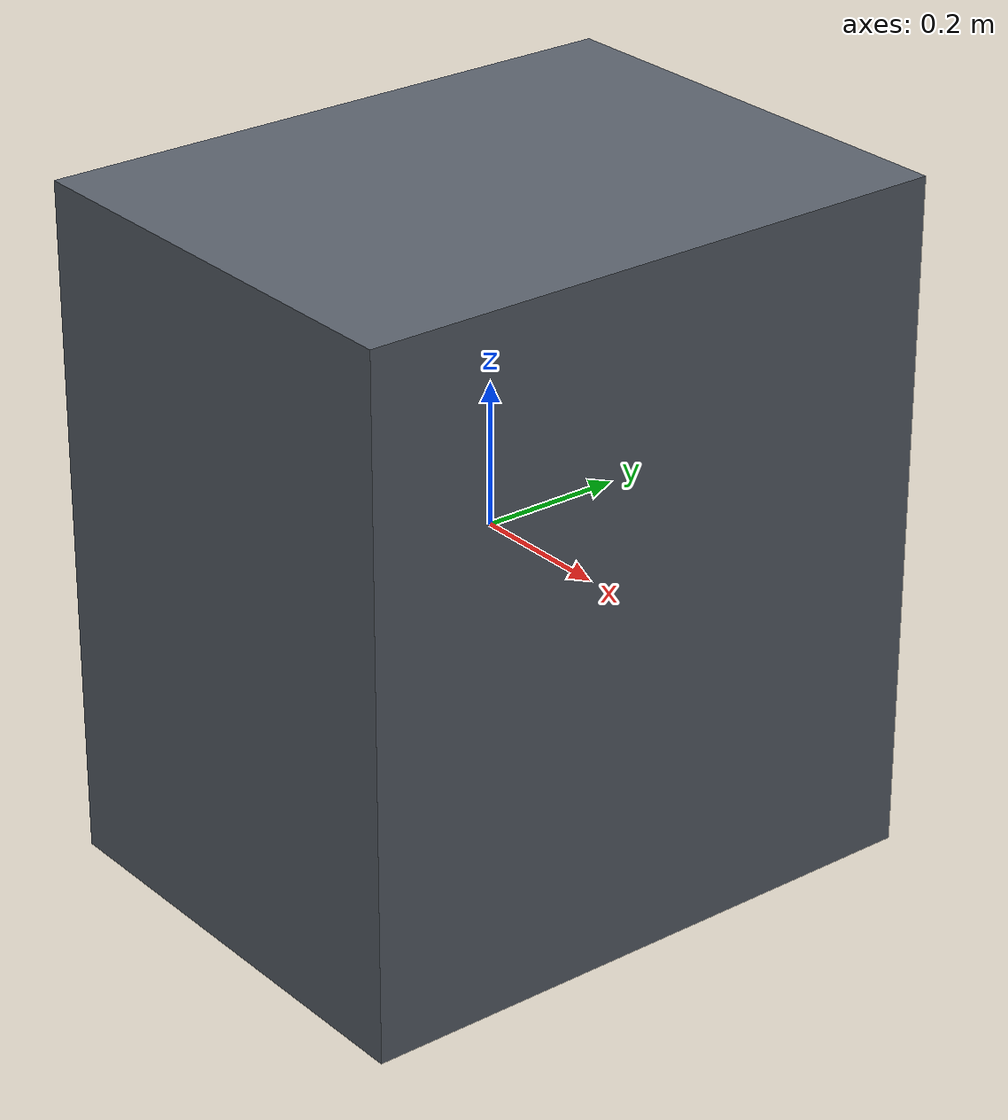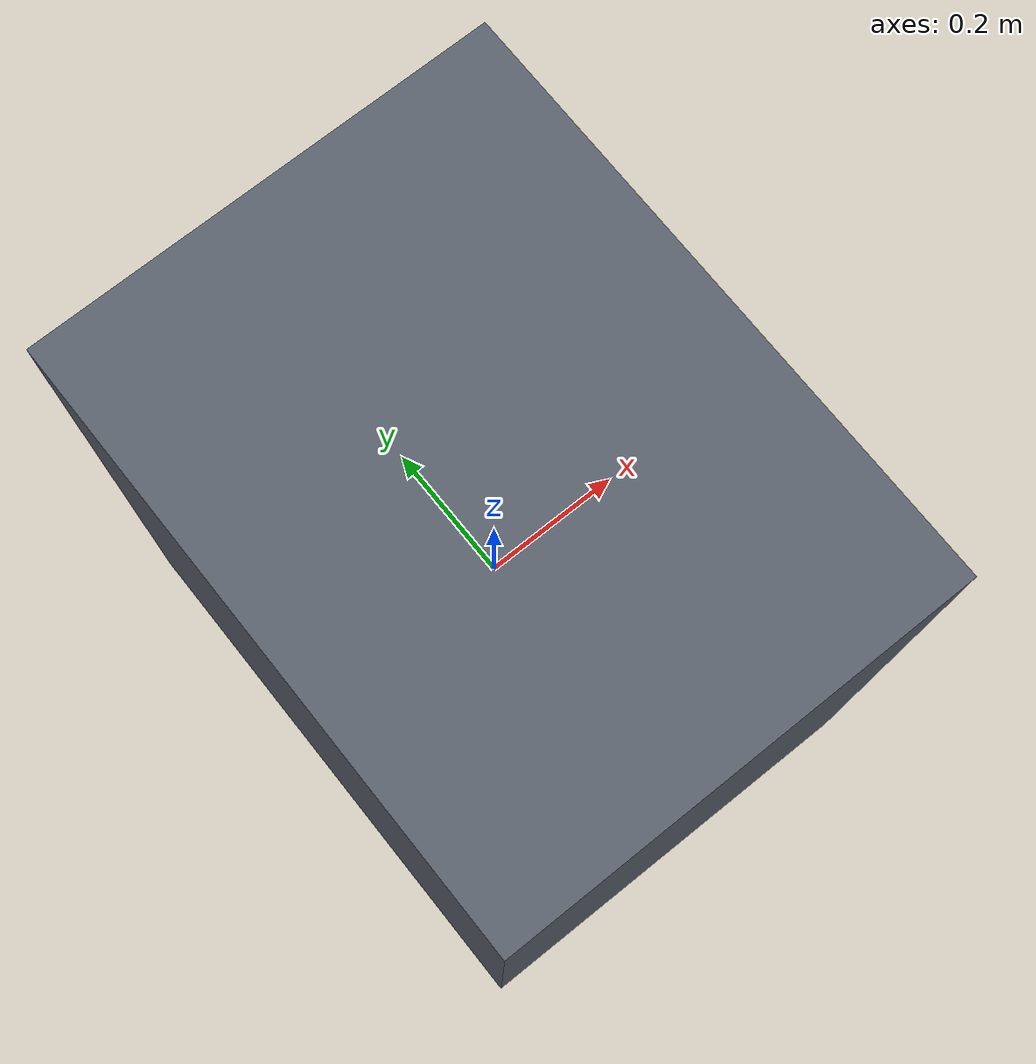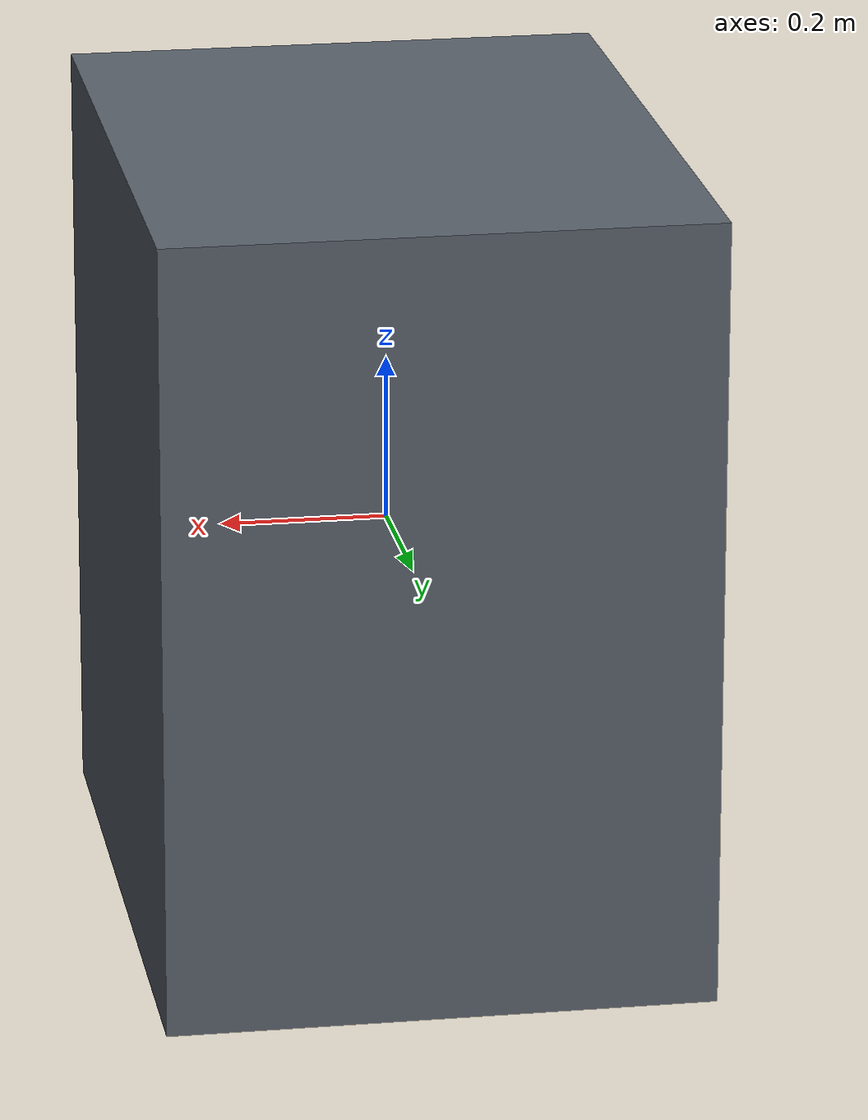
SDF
<?xml version="1.0"?>
<sdf version="1.6">
  <model name="PatientWheelChair">
    <static>true</static>
    <link name="link">
      <collision name="col">
        <geometry>
          <box>
            <size>0.65 0.85 0.95</size>
          </box>
        </geometry>
      </collision>
      <visual name="vis">
        <geometry>
          <box>
            <size>0.65 0.85 0.95</size>
          </box>
        </geometry>
        <material>
          <ambient>0.35 0.38 0.42 1</ambient>
          <diffuse>0.35 0.38 0.42 1</diffuse>
        </material>
      </visual>
    </link>
  </model>
</sdf>
